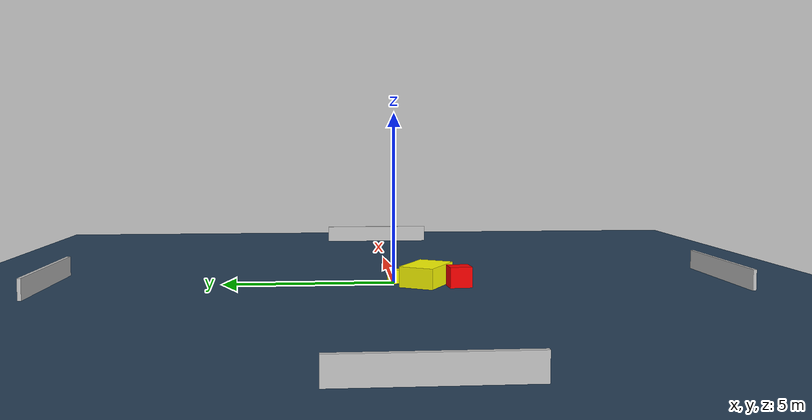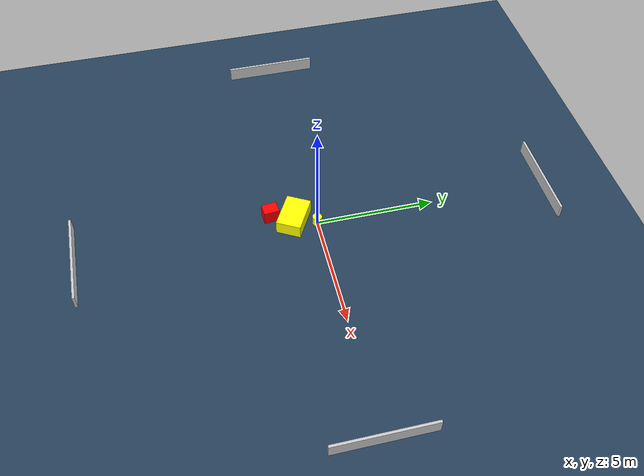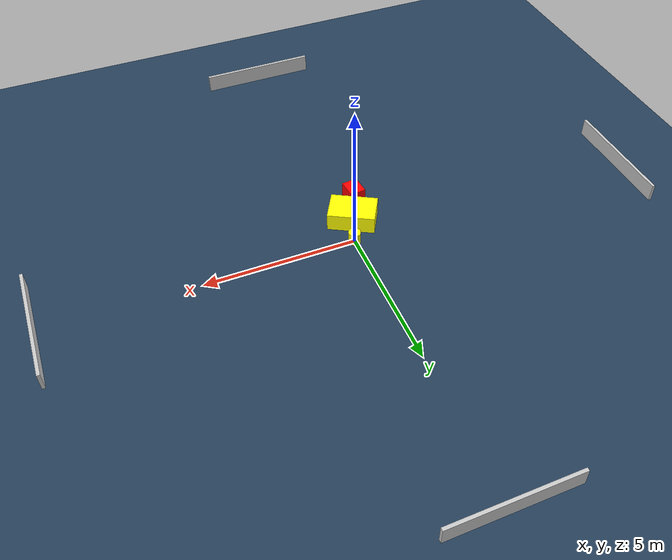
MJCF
<?xml version="1.0" ?>
<mujoco model="generated_environment">
  <option timestep="0.01" integrator="RK4" cone="elliptic"/>
  <default>
    <geom density="1"/>
  </default>
  <asset>
    <texture builtin="gradient" height="3072" name="skybox" rgb1="0.3 0.5 0.7" rgb2="0 0 0" type="skybox" width="512"/>
    <texture builtin="checker" height="300" name="groundplane" rgb1="0.2 0.3 0.4" rgb2="0.1 0.2 0.3" type="2d" width="300"/>
    <material name="groundplane" reflectance="0.2" texrepeat="5 5" texture="groundplane"/>
  </asset>
  <worldbody>
    <light dir="0 0 -1" directional="true" pos="0 0 1.5"/>
    <geom condim="3" friction="0.5 0.005 0.001" material="groundplane" name="floor" pos="0 0 0" size="0 0 0.05" type="plane"/>
    <body name="walls">
      <geom name="wall_1" condim="4" pos="-10.0 0.0 0.3" rgba="0.800000011920929 0.800000011920929 0.800000011920929 1.0" size="0.05 2.0 0.3" type="box"/>
      <geom name="wall_2" condim="4" pos="10.0 0.0 0.3" rgba="0.800000011920929 0.800000011920929 0.800000011920929 1.0" size="0.05 2.0 0.3" type="box"/>
      <geom name="wall_3" condim="4" pos="0.0 -10.0 0.3" rgba="0.800000011920929 0.800000011920929 0.800000011920929 1.0" size="2.0 0.05 0.3" type="box"/>
      <geom name="wall_4" condim="4" pos="0.0 10.0 0.3" rgba="0.800000011920929 0.800000011920929 0.800000011920929 1.0" size="2.0 0.05 0.3" type="box"/>
    </body>
    <body name="robot">
      <joint name="joint_x" type="slide" pos="0 0 0" axis="1 0 0"/>
      <joint name="joint_y" type="slide" pos="0 0 0" axis="0 1 0"/>
      <geom name="robot" type="cylinder" pos="0.0 0.0 0.2" size="0.2 0.2 0.0" mass="5.0" friction="1.0 0.005 0.0001" condim="4" rgba="1.0 1.0 0.0 1.0"/>
    </body>
    <body name="obstacle_1_movable">
      <geom name="obstacle_1_movable" condim="4" pos="-0.31935189515539136 -0.9303991616543884 0.3" euler="0 0 240.5115742590685" friction="0.0 0.005 0.001" rgba="1.0 1.0 0.0 1.0" size="0.5202306727944184 0.7737911077728454 0.3" type="box" mass="0.1"/>
      <joint type="free"/>
    </body>
    <body name="obstacle_2_static">
      <geom name="obstacle_2_static" condim="4" pos="-0.7333579794785388 -1.8391059219076675 0.3" euler="0 0 275.67104513079045" friction="0.0 0.005 0.001" rgba="1.0 0.0 0.0 1.0" size="0.32406437303201496 0.2664199755351362 0.3" type="box"/>
    </body>
  </worldbody>
  <actuator>
    <motor name="actuator_x" joint="joint_x" gear="1" ctrlrange="-1 1"/>
    <motor name="actuator_y" joint="joint_y" gear="1" ctrlrange="-1 1"/>
  </actuator>
</mujoco>
